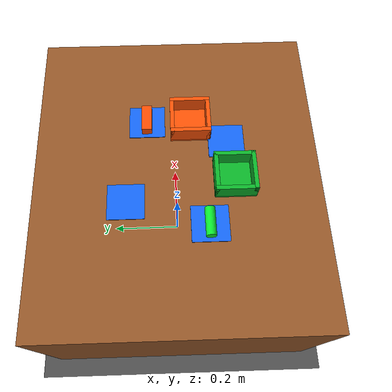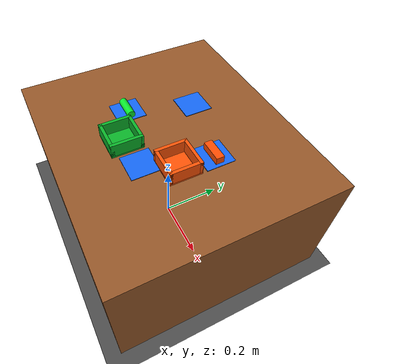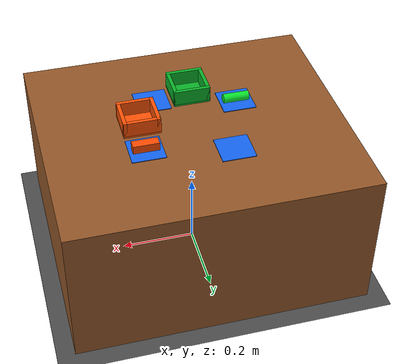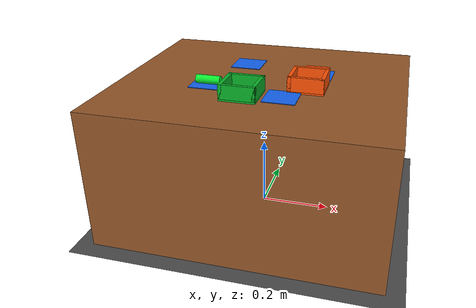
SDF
<?xml version="1.0"?>
<sdf version="1.8">
  <world name="task3_world">
    <gravity>0 0 -9.81</gravity>
    <magnetic_field>6.0e-6 2.3e-5 -4.2e-5</magnetic_field>

    <plugin filename="libignition-gazebo-physics-system.so"
            name="ignition::gazebo::systems::Physics"/>
    <plugin filename="libignition-gazebo-user-commands-system.so"
            name="ignition::gazebo::systems::UserCommands"/>
    <plugin filename="libignition-gazebo-scene-broadcaster-system.so"
            name="ignition::gazebo::systems::SceneBroadcaster"/>
    <plugin filename="libignition-gazebo-sensors-system.so"
            name="ignition::gazebo::systems::Sensors">
      <render_engine>ogre2</render_engine>
    </plugin>

    <physics name="task3_physics" type="ode">
      <max_step_size>0.001</max_step_size>
      <real_time_factor>1.0</real_time_factor>
      <real_time_update_rate>1000</real_time_update_rate>
    </physics>

    <light name="sun" type="directional">
      <pose>0 0 1 0 0 0</pose>
      <cast_shadows>true</cast_shadows>
      <direction>-0.5 0.2 -1.0</direction>
      <diffuse>0.85 0.85 0.85 1</diffuse>
      <specular>0.25 0.25 0.25 1</specular>
    </light>

    <model name="ground_plane">
      <static>true</static>
      <link name="link">
        <collision name="collision">
          <geometry>
            <plane>
              <normal>0 0 1</normal>
              <size>20 20</size>
            </plane>
          </geometry>
        </collision>
        <visual name="visual">
          <geometry>
            <plane>
              <normal>0 0 1</normal>
              <size>20 20</size>
            </plane>
          </geometry>
          <material>
            <ambient>0.18 0.18 0.18 1</ambient>
            <diffuse>0.30 0.30 0.30 1</diffuse>
          </material>
        </visual>
      </link>
    </model>

    <model name="table">
      <static>true</static>
      <pose>0 0 0.20 0 0 0</pose>
      <link name="table_top">
        <collision name="collision">
          <geometry>
            <box><size>0.80 0.70 0.40</size></box>
          </geometry>
        </collision>
        <visual name="visual">
          <geometry>
            <box><size>0.80 0.70 0.40</size></box>
          </geometry>
          <material>
            <ambient>0.38 0.24 0.12 1</ambient>
            <diffuse>0.58 0.34 0.16 1</diffuse>
          </material>
        </visual>
      </link>
    </model>

    <model name="grid_p1">
      <static>true</static>
      <pose>0.141018 0.072702 0.402 0 0 0</pose>
      <link name="grid">
        <visual name="visual">
          <geometry><box><size>0.09 0.09 0.002</size></box></geometry>
          <material><ambient>0.05 0.25 0.75 1</ambient><diffuse>0.08 0.40 0.95 1</diffuse></material>
        </visual>
      </link>
    </model>
    <model name="grid_p2">
      <static>true</static>
      <pose>0.08037 -0.12506 0.402 0 0 0</pose>
      <link name="grid">
        <visual name="visual">
          <geometry><box><size>0.09 0.09 0.002</size></box></geometry>
          <material><ambient>0.05 0.25 0.75 1</ambient><diffuse>0.08 0.40 0.95 1</diffuse></material>
        </visual>
      </link>
    </model>
    <model name="grid_p3">
      <static>true</static>
      <pose>-0.08037 0.12506 0.402 0 0 0</pose>
      <link name="grid">
        <visual name="visual">
          <geometry><box><size>0.09 0.09 0.002</size></box></geometry>
          <material><ambient>0.05 0.25 0.75 1</ambient><diffuse>0.08 0.40 0.95 1</diffuse></material>
        </visual>
      </link>
    </model>
    <model name="grid_p4">
      <static>true</static>
      <pose>-0.141018 -0.072702 0.402 0 0 0</pose>
      <link name="grid">
        <visual name="visual">
          <geometry><box><size>0.09 0.09 0.002</size></box></geometry>
          <material><ambient>0.05 0.25 0.75 1</ambient><diffuse>0.08 0.40 0.95 1</diffuse></material>
        </visual>
      </link>
    </model>

    <model name="bin_a">
      <static>true</static>
      <pose>0.135229 -0.036238 0.40 0 0 0</pose>
      <link name="floor">
        <collision name="collision"><geometry><box><size>0.10 0.10 0.01</size></box></geometry></collision>
        <visual name="visual"><geometry><box><size>0.10 0.10 0.01</size></box></geometry><material><ambient>0.80 0.20 0.02 1</ambient><diffuse>1.0 0.32 0.02 1</diffuse></material></visual>
      </link>
      <link name="wall_x_pos"><pose>0.045 0 0.025 0 0 0</pose><collision name="collision"><geometry><box><size>0.01 0.10 0.04</size></box></geometry></collision><visual name="visual"><geometry><box><size>0.01 0.10 0.04</size></box></geometry><material><ambient>0.80 0.20 0.02 1</ambient><diffuse>1.0 0.32 0.02 1</diffuse></material></visual></link>
      <link name="wall_x_neg"><pose>-0.045 0 0.025 0 0 0</pose><collision name="collision"><geometry><box><size>0.01 0.10 0.04</size></box></geometry></collision><visual name="visual"><geometry><box><size>0.01 0.10 0.04</size></box></geometry><material><ambient>0.80 0.20 0.02 1</ambient><diffuse>1.0 0.32 0.02 1</diffuse></material></visual></link>
      <link name="wall_y_pos"><pose>0 0.045 0.025 0 0 0</pose><collision name="collision"><geometry><box><size>0.10 0.01 0.04</size></box></geometry></collision><visual name="visual"><geometry><box><size>0.10 0.01 0.04</size></box></geometry><material><ambient>0.80 0.20 0.02 1</ambient><diffuse>1.0 0.32 0.02 1</diffuse></material></visual></link>
      <link name="wall_y_neg"><pose>0 -0.045 0.025 0 0 0</pose><collision name="collision"><geometry><box><size>0.10 0.01 0.04</size></box></geometry></collision><visual name="visual"><geometry><box><size>0.10 0.01 0.04</size></box></geometry><material><ambient>0.80 0.20 0.02 1</ambient><diffuse>1.0 0.32 0.02 1</diffuse></material></visual></link>
    </model>

    <model name="bin_b">
      <static>true</static>
      <pose>-0.024314 -0.137873 0.40 0 0 0</pose>
      <link name="floor">
        <collision name="collision"><geometry><box><size>0.10 0.10 0.01</size></box></geometry></collision>
        <visual name="visual"><geometry><box><size>0.10 0.10 0.01</size></box></geometry><material><ambient>0.03 0.42 0.10 1</ambient><diffuse>0.04 0.70 0.16 1</diffuse></material></visual>
      </link>
      <link name="wall_x_pos"><pose>0.045 0 0.025 0 0 0</pose><collision name="collision"><geometry><box><size>0.01 0.10 0.04</size></box></geometry></collision><visual name="visual"><geometry><box><size>0.01 0.10 0.04</size></box></geometry><material><ambient>0.03 0.42 0.10 1</ambient><diffuse>0.04 0.70 0.16 1</diffuse></material></visual></link>
      <link name="wall_x_neg"><pose>-0.045 0 0.025 0 0 0</pose><collision name="collision"><geometry><box><size>0.01 0.10 0.04</size></box></geometry></collision><visual name="visual"><geometry><box><size>0.01 0.10 0.04</size></box></geometry><material><ambient>0.03 0.42 0.10 1</ambient><diffuse>0.04 0.70 0.16 1</diffuse></material></visual></link>
      <link name="wall_y_pos"><pose>0 0.045 0.025 0 0 0</pose><collision name="collision"><geometry><box><size>0.10 0.01 0.04</size></box></geometry></collision><visual name="visual"><geometry><box><size>0.10 0.01 0.04</size></box></geometry><material><ambient>0.03 0.42 0.10 1</ambient><diffuse>0.04 0.70 0.16 1</diffuse></material></visual></link>
      <link name="wall_y_neg"><pose>0 -0.045 0.025 0 0 0</pose><collision name="collision"><geometry><box><size>0.10 0.01 0.04</size></box></geometry></collision><visual name="visual"><geometry><box><size>0.10 0.01 0.04</size></box></geometry><material><ambient>0.03 0.42 0.10 1</ambient><diffuse>0.04 0.70 0.16 1</diffuse></material></visual></link>
    </model>

    <model name="orange_battery_1">
      <static>false</static>
      <pose>0.141018 0.072702 0.4130 0 0 0</pose>
      <link name="body">
        <inertial>
          <mass>0.08</mass>
          <inertia><ixx>0.00002</ixx><iyy>0.00005</iyy><izz>0.00005</izz><ixy>0</ixy><ixz>0</ixz><iyz>0</iyz></inertia>
        </inertial>
        <collision name="collision">
          <geometry><box><size>0.070 0.025 0.025</size></box></geometry>
          <surface><friction><ode><mu>2.0</mu><mu2>2.0</mu2></ode></friction><contact><ode><kp>200000</kp><kd>100</kd></ode></contact></surface>
        </collision>
        <visual name="visual"><geometry><box><size>0.070 0.025 0.025</size></box></geometry><material><ambient>0.95 0.18 0.01 1</ambient><diffuse>1.0 0.30 0.01 1</diffuse></material></visual>
      </link>
    </model>

    <model name="green_can_1">
      <static>false</static>
      <pose>-0.141018 -0.072702 0.4130 0 1.5708 0</pose>
      <link name="body">
        <inertial>
          <mass>0.10</mass>
          <inertia><ixx>0.00003</ixx><iyy>0.00003</iyy><izz>0.00002</izz><ixy>0</ixy><ixz>0</ixz><iyz>0</iyz></inertia>
        </inertial>
        <collision name="collision">
          <geometry><box><size>0.025 0.025 0.070</size></box></geometry>
          <surface><friction><ode><mu>2.0</mu><mu2>2.0</mu2></ode></friction><contact><ode><kp>200000</kp><kd>100</kd></ode></contact></surface>
        </collision>
        <visual name="visual"><geometry><cylinder><radius>0.0125</radius><length>0.070</length></cylinder></geometry><material><ambient>0.02 0.65 0.12 1</ambient><diffuse>0.04 0.90 0.18 1</diffuse></material></visual>
      </link>
    </model>

    <model name="overhead_camera">
      <static>true</static>
      <pose>0 0 1.35 0 1.5708 0</pose>
      <link name="camera_link">
        <sensor name="rgb_camera" type="camera">
          <always_on>true</always_on>
          <update_rate>30</update_rate>
          <visualize>true</visualize>
          <topic>/task3/camera/image_raw</topic>
          <camera>
            <horizontal_fov>1.05</horizontal_fov>
            <image>
              <width>640</width>
              <height>480</height>
              <format>R8G8B8</format>
            </image>
            <clip><near>0.05</near><far>5.0</far></clip>
          </camera>
        </sensor>
      </link>
    </model>
  </world>
</sdf>
